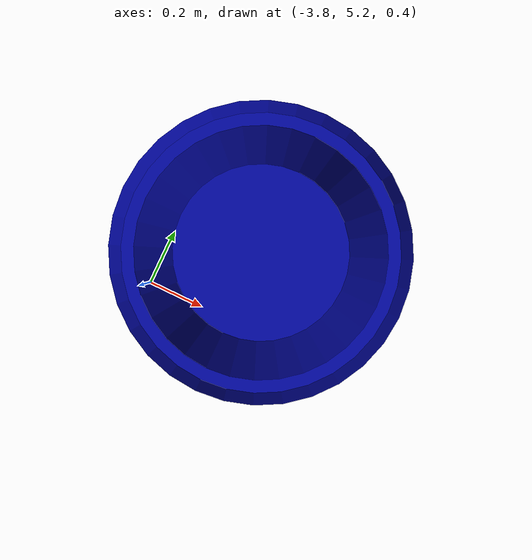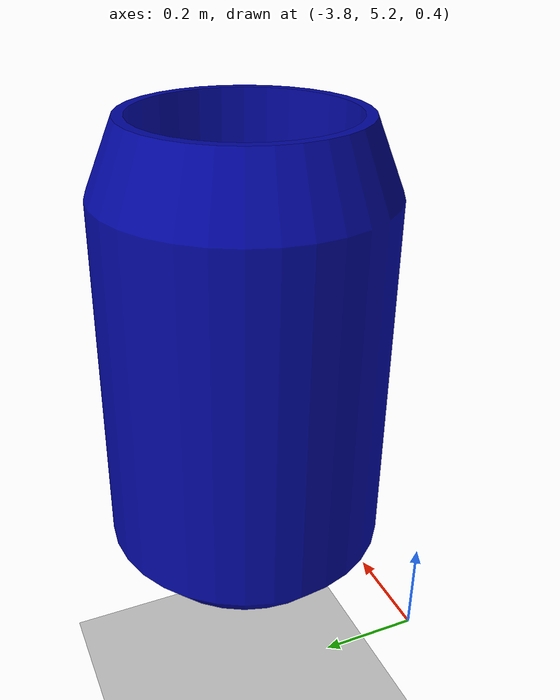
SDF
<sdf version="1.4">
  <world name="arena.0004">
    <include>
      <uri>model://ground_plane</uri>
    </include>
    <include>
      <uri>model://sun</uri>
    </include>
    <model name="barrel.001">
      <pose>-3.490981101989746 5.4643073081970215 0.49000000953674316  0.0 0.0 0.0</pose>
      <static>true</static>
      <link name="body">
	<visual name="visual">
        <geometry>
          <mesh>
            <uri>file://models/barrel.dae</uri>
          </mesh>
        </geometry>
	</visual>
      </link>
    </model>
  </world>
</sdf>
